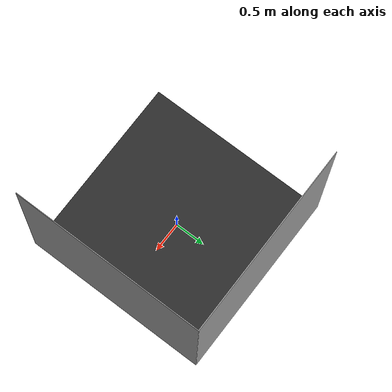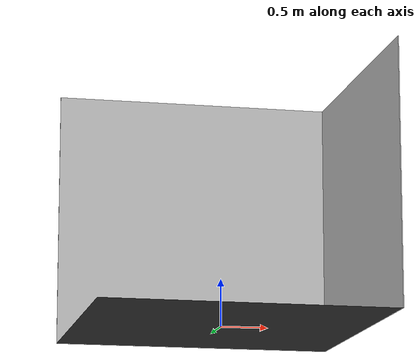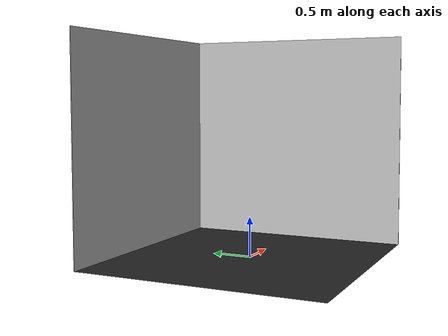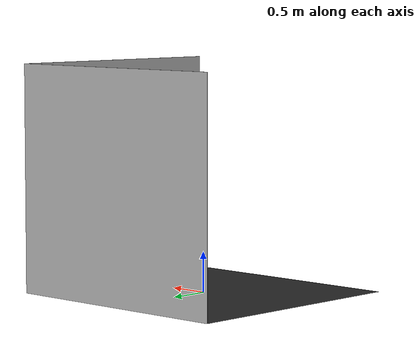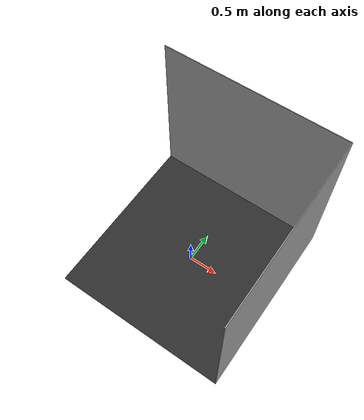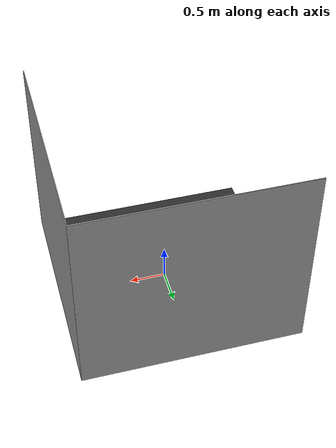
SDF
<?xml version="1.0" ?>
<sdf version='1.4'>
  <model name="fetchit_simple_env">
      <static>1</static>
      <link name='link'>
        <visual name='visual'>
          <geometry>
            <mesh>
              <uri>model://fetchit_simple_env/meshes/fetchit_env_barebones_v3.dae</uri>
              <scale>1 1 1</scale>
            </mesh>
          </geometry>
        </visual>
        <velocity_decay>
          <linear>0.000000</linear>
          <angular>0.000000</angular>
        </velocity_decay>
        <self_collide>0</self_collide>
        <kinematic>0</kinematic>
        <gravity>1</gravity>
      </link>
  </model>
</sdf>
